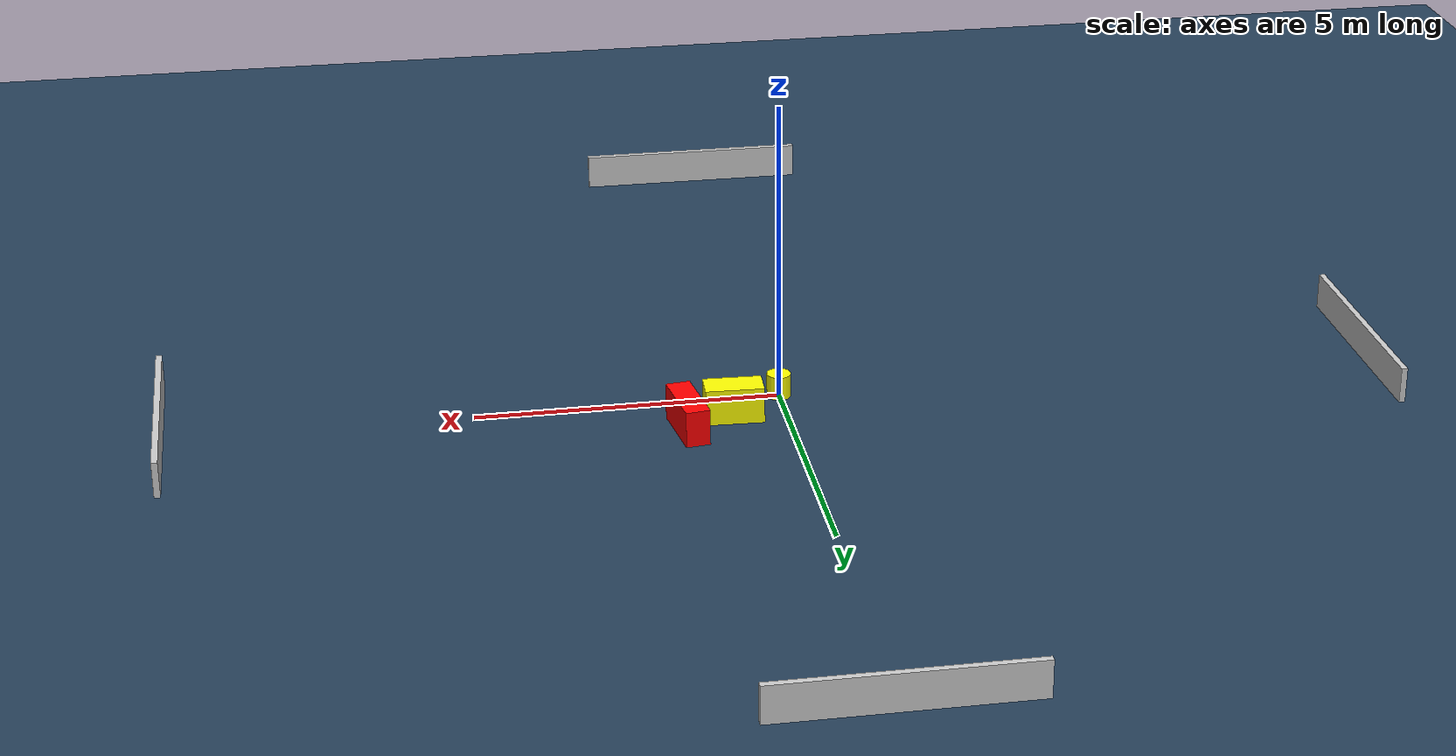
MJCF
<?xml version="1.0" ?>
<mujoco model="generated_environment">
  <option timestep="0.01" integrator="RK4" cone="elliptic"/>
  <default>
    <geom density="1"/>
  </default>
  <asset>
    <texture builtin="gradient" height="3072" name="skybox" rgb1="0.3 0.5 0.7" rgb2="0 0 0" type="skybox" width="512"/>
    <texture builtin="checker" height="300" name="groundplane" rgb1="0.2 0.3 0.4" rgb2="0.1 0.2 0.3" type="2d" width="300"/>
    <material name="groundplane" reflectance="0.2" texrepeat="5 5" texture="groundplane"/>
  </asset>
  <worldbody>
    <light dir="0 0 -1" directional="true" pos="0 0 1.5"/>
    <geom condim="3" friction="0.5 0.005 0.001" material="groundplane" name="floor" pos="0 0 0" size="0 0 0.05" type="plane"/>
    <body name="walls">
      <geom name="wall_1" condim="4" pos="-10.0 0.0 0.3" rgba="0.800000011920929 0.800000011920929 0.800000011920929 1.0" size="0.05 2.0 0.3" type="box"/>
      <geom name="wall_2" condim="4" pos="10.0 0.0 0.3" rgba="0.800000011920929 0.800000011920929 0.800000011920929 1.0" size="0.05 2.0 0.3" type="box"/>
      <geom name="wall_3" condim="4" pos="0.0 -10.0 0.3" rgba="0.800000011920929 0.800000011920929 0.800000011920929 1.0" size="2.0 0.05 0.3" type="box"/>
      <geom name="wall_4" condim="4" pos="0.0 10.0 0.3" rgba="0.800000011920929 0.800000011920929 0.800000011920929 1.0" size="2.0 0.05 0.3" type="box"/>
    </body>
    <body name="robot">
      <joint name="joint_x" type="slide" pos="0 0 0" axis="1 0 0"/>
      <joint name="joint_y" type="slide" pos="0 0 0" axis="0 1 0"/>
      <geom name="robot" type="cylinder" pos="0.0 0.0 0.2" size="0.2 0.2 0.0" mass="5.0" friction="1.0 0.005 0.0001" condim="4" rgba="1.0 1.0 0.0 1.0"/>
    </body>
    <body name="obstacle_1_movable">
      <geom name="obstacle_1_movable" condim="4" pos="0.8641958427420645 0.6976754344803809 0.3" euler="0 0 267.9020903654214" friction="0.0 0.005 0.001" rgba="1.0 1.0 0.0 1.0" size="0.24953421977149726 0.4791962365760486 0.3" type="box" mass="0.1"/>
      <joint type="free"/>
    </body>
    <body name="obstacle_2_static">
      <geom name="obstacle_2_static" condim="4" pos="1.658626332916383 1.0677202443281715 0.3" euler="0 0 278.30338839127006" friction="0.0 0.005 0.001" rgba="1.0 0.0 0.0 1.0" size="0.5762822941230534 0.20074097655710985 0.3" type="box"/>
    </body>
  </worldbody>
  <actuator>
    <motor name="actuator_x" joint="joint_x" gear="1" ctrlrange="-1 1"/>
    <motor name="actuator_y" joint="joint_y" gear="1" ctrlrange="-1 1"/>
  </actuator>
</mujoco>
